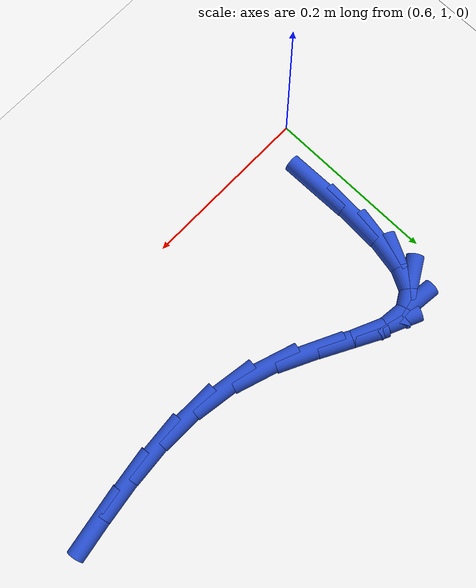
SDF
<sdf version="1.6">
 <world name="default">
  <model name="ground_plane">
   <static>1</static>
   <link name="link">
    <collision name="collision">
     <geometry><plane><normal>0 0 1</normal><size>100 100</size></plane></geometry>
     <surface><friction><ode><mu>100</mu><mu2>50</mu2></ode></friction></surface>
    </collision>
    <visual name="visual">
     <cast_shadows>0</cast_shadows>
     <geometry><plane><normal>0 0 1</normal><size>100 100</size></plane></geometry>
     <material>
      <script><uri>file://media/materials/scripts/gazebo.material</uri><name>Gazebo/WhiteGlow</name></script>
     </material>
    </visual>
   </link>
  </model>
  <model name="line">
   <link name="link_29">
    <pose>0.6290996516428138 1.07591732186002 0.01 0 1.57 -1.5558998651254214</pose>
    <collision name="collision">
     <geometry><cylinder><radius>0.01</radius><length>0.08</length></cylinder></geometry>
    </collision>
    <visual name="visual">
     <material>
      <script><name>Gazebo/Blue</name><uri>file://media/materials/scripts/gazebo.material</uri></script>
     </material>
     <geometry><cylinder><radius>0.01</radius><length>0.08</length></cylinder></geometry>
    </visual>
   </link>
   <link name="link_30">
    <pose>0.6283409143629883 1.1268476147984074 0.01 0 1.57 1.5207544276093539</pose>
    <collision name="collision">
     <geometry><cylinder><radius>0.01</radius><length>0.08</length></cylinder></geometry>
    </collision>
    <visual name="visual">
     <material>
      <script><name>Gazebo/Blue</name><uri>file://media/materials/scripts/gazebo.material</uri></script>
     </material>
     <geometry><cylinder><radius>0.01</radius><length>0.08</length></cylinder></geometry>
    </visual>
   </link>
   <link name="link_31">
    <pose>0.630537386967763 1.1707036408791096 0.01 0 1.57 1.386839334936337</pose>
    <collision name="collision">
     <geometry><cylinder><radius>0.01</radius><length>0.08</length></cylinder></geometry>
    </collision>
    <visual name="visual">
     <material>
      <script><name>Gazebo/Blue</name><uri>file://media/materials/scripts/gazebo.material</uri></script>
     </material>
     <geometry><cylinder><radius>0.01</radius><length>0.08</length></cylinder></geometry>
    </visual>
   </link>
   <link name="link_32">
    <pose>0.6370324922001667 1.2056122039098618 0.01 0 1.57 1.1040578928921694</pose>
    <collision name="collision">
     <geometry><cylinder><radius>0.01</radius><length>0.08</length></cylinder></geometry>
    </collision>
    <visual name="visual">
     <material>
      <script><name>Gazebo/Blue</name><uri>file://media/materials/scripts/gazebo.material</uri></script>
     </material>
     <geometry><cylinder><radius>0.01</radius><length>0.08</length></cylinder></geometry>
    </visual>
   </link>
   <link name="link_33">
    <pose>0.6491696528032284 1.2297001076983973 0.01 0 1.57 0.5373556526796155</pose>
    <collision name="collision">
     <geometry><cylinder><radius>0.01</radius><length>0.08</length></cylinder></geometry>
    </collision>
    <visual name="visual">
     <material>
      <script><name>Gazebo/Blue</name><uri>file://media/materials/scripts/gazebo.material</uri></script>
     </material>
     <geometry><cylinder><radius>0.01</radius><length>0.08</length></cylinder></geometry>
    </visual>
   </link>
   <link name="link_34">
    <pose>0.6682922915199769 1.2410941560524515 0.01 0 1.57 -0.11305323790939938</pose>
    <collision name="collision">
     <geometry><cylinder><radius>0.01</radius><length>0.08</length></cylinder></geometry>
    </collision>
    <visual name="visual">
     <material>
      <script><name>Gazebo/Blue</name><uri>file://media/materials/scripts/gazebo.material</uri></script>
     </material>
     <geometry><cylinder><radius>0.01</radius><length>0.08</length></cylinder></geometry>
    </visual>
   </link>
   <link name="link_35">
    <pose>0.6957186965011104 1.2379802344676312 0.01 0 1.57 -0.425298309428842</pose>
    <collision name="collision">
     <geometry><cylinder><radius>0.01</radius><length>0.08</length></cylinder></geometry>
    </collision>
    <visual name="visual">
     <material>
      <script><name>Gazebo/Blue</name><uri>file://media/materials/scripts/gazebo.material</uri></script>
     </material>
     <geometry><cylinder><radius>0.01</radius><length>0.08</length></cylinder></geometry>
    </visual>
   </link>
   <link name="link_36">
    <pose>0.7313679768481677 1.221833156255417 0.01 0 1.57 -0.49959470110784243</pose>
    <collision name="collision">
     <geometry><cylinder><radius>0.01</radius><length>0.08</length></cylinder></geometry>
    </collision>
    <visual name="visual">
     <material>
      <script><name>Gazebo/Blue</name><uri>file://media/materials/scripts/gazebo.material</uri></script>
     </material>
     <geometry><cylinder><radius>0.01</radius><length>0.08</length></cylinder></geometry>
    </visual>
   </link>
   <link name="link_37">
    <pose>0.7730509146086263 1.199083594734797 0.01 0 1.57 -0.46072907651925005</pose>
    <collision name="collision">
     <geometry><cylinder><radius>0.01</radius><length>0.08</length></cylinder></geometry>
    </collision>
    <visual name="visual">
     <material>
      <script><name>Gazebo/Blue</name><uri>file://media/materials/scripts/gazebo.material</uri></script>
     </material>
     <geometry><cylinder><radius>0.01</radius><length>0.08</length></cylinder></geometry>
    </visual>
   </link>
   <link name="link_38">
    <pose>0.8184038105999125 1.176572360991766 0.01 0 1.57 -0.3255957145227264</pose>
    <collision name="collision">
     <geometry><cylinder><radius>0.01</radius><length>0.08</length></cylinder></geometry>
    </collision>
    <visual name="visual">
     <material>
      <script><name>Gazebo/Blue</name><uri>file://media/materials/scripts/gazebo.material</uri></script>
     </material>
     <geometry><cylinder><radius>0.01</radius><length>0.08</length></cylinder></geometry>
    </visual>
   </link>
   <link name="link_39">
    <pose>0.8651486734777377 1.1607907699826252 0.01 0 1.57 -0.15506147269671045</pose>
    <collision name="collision">
     <geometry><cylinder><radius>0.01</radius><length>0.08</length></cylinder></geometry>
    </collision>
    <visual name="visual">
     <material>
      <script><name>Gazebo/Blue</name><uri>file://media/materials/scripts/gazebo.material</uri></script>
     </material>
     <geometry><cylinder><radius>0.01</radius><length>0.08</length></cylinder></geometry>
    </visual>
   </link>
   <link name="link_40">
    <pose>0.9121825509090812 1.1534386077336247 0.01 0 1.57 -0.01486051827643493</pose>
    <collision name="collision">
     <geometry><cylinder><radius>0.01</radius><length>0.08</length></cylinder></geometry>
    </collision>
    <visual name="visual">
     <material>
      <script><name>Gazebo/Blue</name><uri>file://media/materials/scripts/gazebo.material</uri></script>
     </material>
     <geometry><cylinder><radius>0.01</radius><length>0.08</length></cylinder></geometry>
    </visual>
   </link>
   <link name="link_41">
    <pose>0.9592550725568714 1.1527390341678247 0.01 0 1.57 0.08719682032494049</pose>
    <collision name="collision">
     <geometry><cylinder><radius>0.01</radius><length>0.08</length></cylinder></geometry>
    </collision>
    <visual name="visual">
     <material>
      <script><name>Gazebo/Blue</name><uri>file://media/materials/scripts/gazebo.material</uri></script>
     </material>
     <geometry><cylinder><radius>0.01</radius><length>0.08</length></cylinder></geometry>
    </visual>
   </link>
   <link name="link_42">
    <pose>1.0061349969377271 1.1568372063037295 0.01 0 1.57 0.15041927867017058</pose>
    <collision name="collision">
     <geometry><cylinder><radius>0.01</radius><length>0.08</length></cylinder></geometry>
    </collision>
    <visual name="visual">
     <material>
      <script><name>Gazebo/Blue</name><uri>file://media/materials/scripts/gazebo.material</uri></script>
     </material>
     <geometry><cylinder><radius>0.01</radius><length>0.08</length></cylinder></geometry>
    </visual>
   </link>
   <link name="link_43">
    <pose>1.0525910825682656 1.1638782811598427 0.01 0 1.57 0.17565883316639536</pose>
    <collision name="collision">
     <geometry><cylinder><radius>0.01</radius><length>0.08</length></cylinder></geometry>
    </collision>
    <visual name="visual">
     <material>
      <script><name>Gazebo/Blue</name><uri>file://media/materials/scripts/gazebo.material</uri></script>
     </material>
     <geometry><cylinder><radius>0.01</radius><length>0.08</length></cylinder></geometry>
    </visual>
   </link>
  </model>
 </world>
</sdf>
